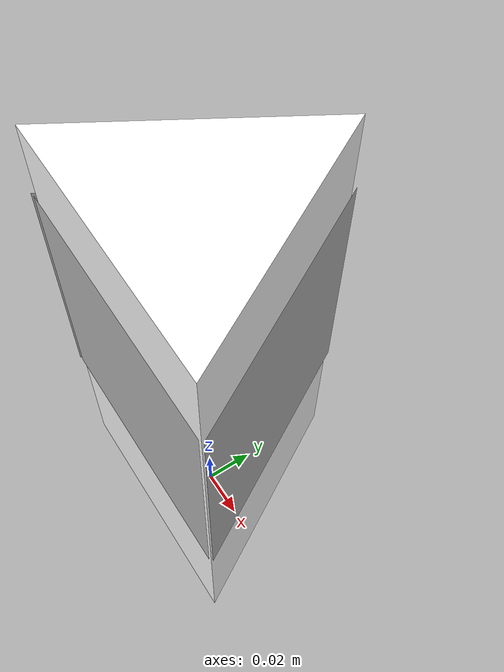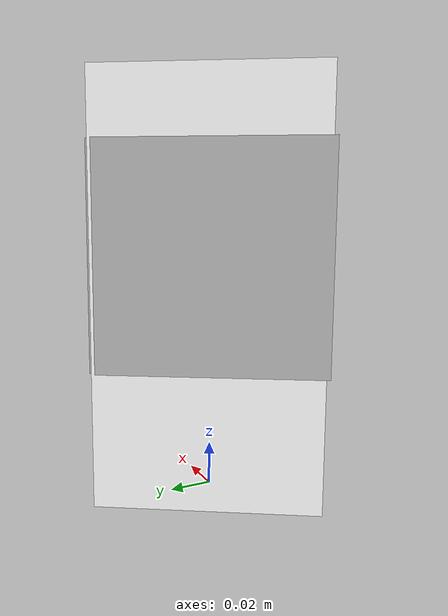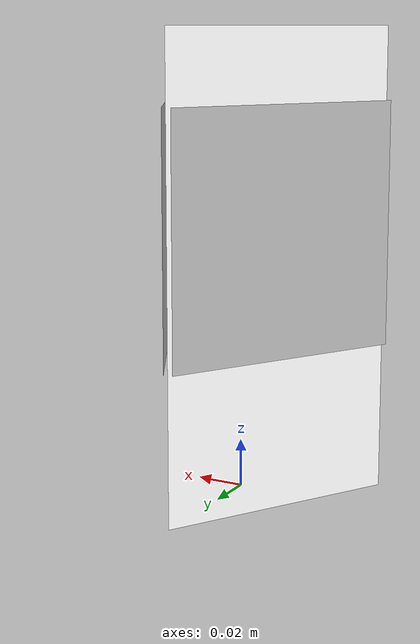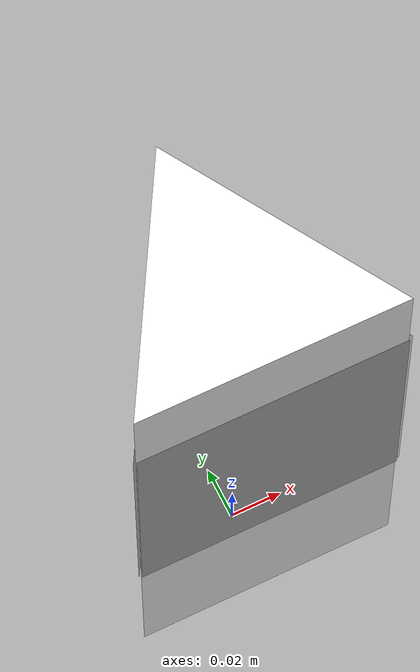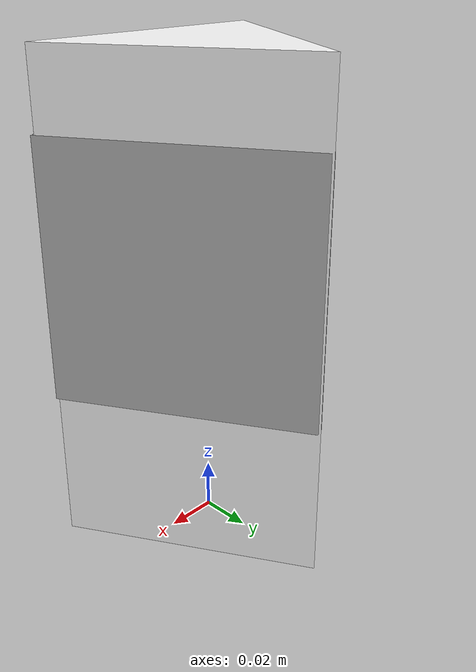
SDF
<?xml version="1.0" ?>
<sdf version="1.5">
    <model name='triangular_prism_direccion_obligada'>
        <static>1</static>
        <link name='link'>
            <collision name='collision'>
            <geometry>
                <mesh>
                <uri>model://triangular_prism/meshes/triangular_prism.dae</uri>
                <scale>1 1 1</scale>
                </mesh>
            </geometry>
            <max_contacts>10</max_contacts>
            <surface>
                <contact>
                <ode/>
                </contact>
                <bounce/>
                <friction>
                <ode/>
                </friction>
            </surface>
            </collision>

            <visual name='visual_prism'>
                <cast_shadows>0</cast_shadows>
                <geometry>
                    <mesh>
                    <uri>model://triangular_prism/meshes/triangular_prism.dae</uri>
                    <scale>1 1 1</scale>
                    </mesh>
                </geometry>
            </visual>

            <visual name="visual_traffic">
                <pose>0 -0.029307 0.111493 0 -0 0</pose>
                <cast_shadows>0</cast_shadows>
                <geometry>
                    <mesh>
                    <uri>model://direccion_obligada_sign_prism/meshes/signal_dir_obligada_fix.dae</uri>
                    <scale>1 1 1</scale>
                    </mesh>
                </geometry>
            </visual>

            <visual name="visual_traffic_2">
                <pose>0.026212 0.014368 0.111493 0 -0 2.0907504363002</pose>
                <cast_shadows>0</cast_shadows>
                <geometry>
                    <mesh>
                    <uri>model://direccion_obligada_sign_prism/meshes/signal_dir_obligada_fix.dae</uri>
                    <scale>1 1 1</scale>
                    </mesh>
                </geometry>
            </visual>

            <visual name="visual_traffic_3">
                <pose>-0.026139 0.013183 0.111493 0 0 4.1908202443281</pose>
                <cast_shadows>0</cast_shadows>
                <geometry>
                    <mesh>
                    <uri>model://direccion_obligada_sign_prism/meshes/signal_dir_obligada_fix.dae</uri>
                    <scale>1 1 1</scale>
                    </mesh>
                </geometry>
            </visual>

            <self_collide>0</self_collide>
            <kinematic>0</kinematic>
            <gravity>1</gravity>
        </link>
        <pose>0 0 0 0 -0 0</pose>
    </model>
</sdf>
